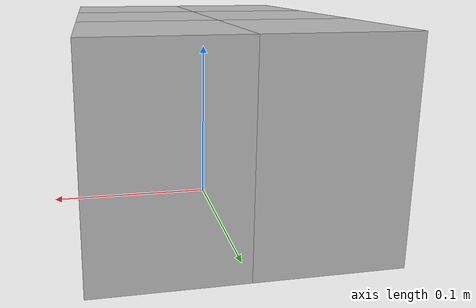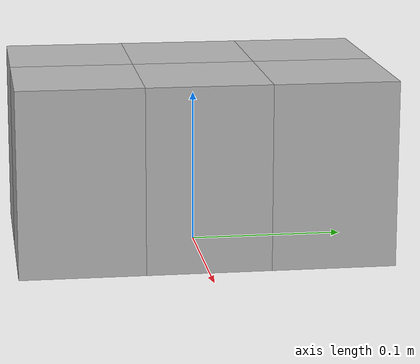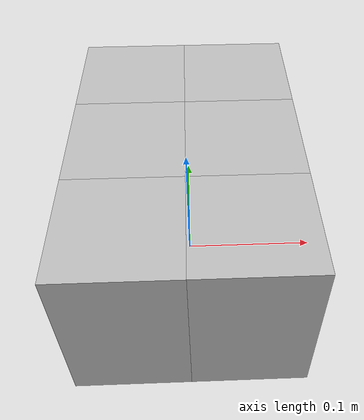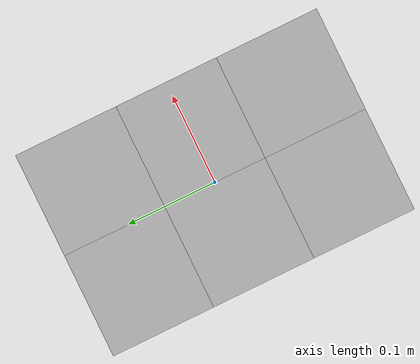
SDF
<?xml version="1.0"?>
<!--
  Planta (vista superior) — cada celda = 8x8 cm
    X X
    X X
    X X
-->
<sdf version="1.6">
  <model name="kalman_edificio_B">
    <static>true</static>
    <link name="link">

      <collision name="col_0"><pose>-0.04  0.08 0.06 0 0 0</pose>
        <geometry><box><size>0.08 0.08 0.12</size></box></geometry>
      </collision>
      <visual name="vis_0"><pose>-0.04  0.08 0.06 0 0 0</pose>
        <geometry><box><size>0.08 0.08 0.12</size></box></geometry>
        <material><script>
          <uri>model://kalman_lab_box/materials/scripts</uri>
          <uri>model://kalman_lab_box/materials/textures</uri>
          <name>kalman_lab/Melamina</name>
        </script></material>
      </visual>

      <collision name="col_1"><pose> 0.04  0.08 0.06 0 0 0</pose>
        <geometry><box><size>0.08 0.08 0.12</size></box></geometry>
      </collision>
      <visual name="vis_1"><pose> 0.04  0.08 0.06 0 0 0</pose>
        <geometry><box><size>0.08 0.08 0.12</size></box></geometry>
        <material><script>
          <uri>model://kalman_lab_box/materials/scripts</uri>
          <uri>model://kalman_lab_box/materials/textures</uri>
          <name>kalman_lab/Melamina</name>
        </script></material>
      </visual>

      <collision name="col_2"><pose>-0.04  0.00 0.06 0 0 0</pose>
        <geometry><box><size>0.08 0.08 0.12</size></box></geometry>
      </collision>
      <visual name="vis_2"><pose>-0.04  0.00 0.06 0 0 0</pose>
        <geometry><box><size>0.08 0.08 0.12</size></box></geometry>
        <material><script>
          <uri>model://kalman_lab_box/materials/scripts</uri>
          <uri>model://kalman_lab_box/materials/textures</uri>
          <name>kalman_lab/Melamina</name>
        </script></material>
      </visual>

      <collision name="col_3"><pose> 0.04  0.00 0.06 0 0 0</pose>
        <geometry><box><size>0.08 0.08 0.12</size></box></geometry>
      </collision>
      <visual name="vis_3"><pose> 0.04  0.00 0.06 0 0 0</pose>
        <geometry><box><size>0.08 0.08 0.12</size></box></geometry>
        <material><script>
          <uri>model://kalman_lab_box/materials/scripts</uri>
          <uri>model://kalman_lab_box/materials/textures</uri>
          <name>kalman_lab/Melamina</name>
        </script></material>
      </visual>

      <collision name="col_4"><pose>-0.04 -0.08 0.06 0 0 0</pose>
        <geometry><box><size>0.08 0.08 0.12</size></box></geometry>
      </collision>
      <visual name="vis_4"><pose>-0.04 -0.08 0.06 0 0 0</pose>
        <geometry><box><size>0.08 0.08 0.12</size></box></geometry>
        <material><script>
          <uri>model://kalman_lab_box/materials/scripts</uri>
          <uri>model://kalman_lab_box/materials/textures</uri>
          <name>kalman_lab/Melamina</name>
        </script></material>
      </visual>

      <collision name="col_5"><pose> 0.04 -0.08 0.06 0 0 0</pose>
        <geometry><box><size>0.08 0.08 0.12</size></box></geometry>
      </collision>
      <visual name="vis_5"><pose> 0.04 -0.08 0.06 0 0 0</pose>
        <geometry><box><size>0.08 0.08 0.12</size></box></geometry>
        <material><script>
          <uri>model://kalman_lab_box/materials/scripts</uri>
          <uri>model://kalman_lab_box/materials/textures</uri>
          <name>kalman_lab/Melamina</name>
        </script></material>
      </visual>

    </link>
  </model>
</sdf>
